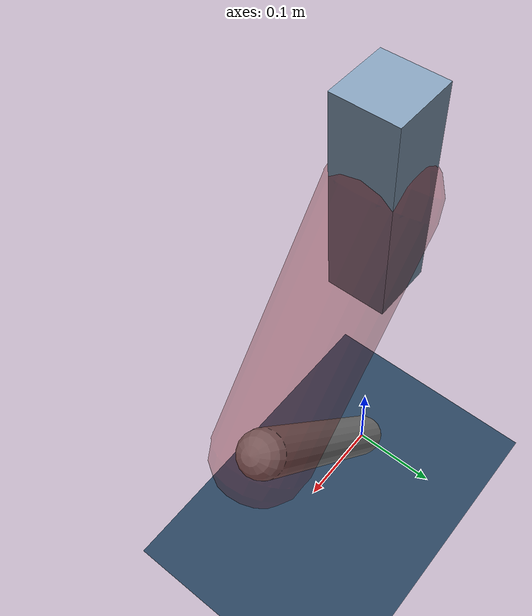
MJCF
<mujoco model="Hopper2D">
	<compiler inertiafromgeom="true" angle="radian" />
	<option timestep="0.001" integrator="implicit" cone="elliptic" solver="Newton" tolerance="1e-10" />

	<default>
		<geom contype="1" conaffinity="1" condim="3" friction="2 0.005 0.0001" solref="0.005 1" />
		<joint limited="true" damping="0.1" />
	</default>

	<asset>
		<texture name="skybox" type="skybox" builtin="gradient" rgb1=".4 .6 .8" rgb2="0 0 0" width="800" height="800" />
		<texture name="grid" type="2d" builtin="checker" rgb1=".1 .2 .3" rgb2=".2 .3 .4" width="300" height="300" mark="edge" markrgb=".2 .3 .4" />
		<material name="ground" texture="grid" texrepeat="1 1" texuniform="true" reflectance="0.1" />
		<material name="leg" rgba="0.5 0.6 0.7 1" />
	</asset>

	<worldbody>

		<geom name="floor" type="plane" size="5 5 0.25" material="ground" />

		<light directional="false" diffuse="0.8 0.8 0.8" specular="0.3 0.3 0.3" pos="0 0 2" dir="0 0 -1" />
		<light mode="targetbodycom" target="base" directional="false" diffuse="0.8 0.8 0.8" specular="0.3 0.3 0.3" pos="0 0 2" dir="0 0 -1" />

		<camera name="fixed" pos="0 -2 1" xyaxes="1 0 0 0 0 1" />
		<camera name="tracking" mode="trackcom" pos="0 -3 1" />

		<body name="root" pos="0 0 0.42078688740388487">
			<joint name="slide_x" type="slide" axis="1 0 0" range="-100 100" />
			<joint name="slide_z" type="slide" axis="0 0 1" range="0 10" />

			<body name="base" pos="0 0 0">
				<geom name="torso" type="box" size="0.03 0.03 0.1" mass="1.697" material="leg" />

				<body name="link1" pos="0 0 0" euler="0 0.8572501283032659 0">
					<joint type="hinge" axis="0 -1 0" pos="0 0 0" name="hinge1" limited="true" range="-3.14 3.14" stiffness="0" damping="0.1" />
					<geom name="thigh" type="capsule" fromto="0 0 0 0.2572053898448584 0 0" size="0.05" rgba="0.5 0 0 0.3" mass="0.8751340135966319" />

					<body name="link2" pos="0.2572053898448584 0 0" euler="0 1.3530763666343792 0">
						<joint type="hinge" axis="0 -1 0" pos="0 0 0" name="hinge2" limited="true" range="-3.14 3.14" stiffness="0" damping="0.1" />
						<geom name="shank" type="capsule" fromto="0 0 0 0.2820720190892817 0 0" size="0.025" mass="0.4688576152714254" />

					</body>
				</body>
			</body>
		</body>
	</worldbody>

	<actuator>
		<motor name="torque1" joint="hinge1" ctrlrange="-48.49640492834898 48.49640492834898" ctrllimited="true" gear="1" />
		<motor name="torque2" joint="hinge2" ctrlrange="-61.50865463853827 61.50865463853827" ctrllimited="true" gear="1" />
	</actuator>
</mujoco>
